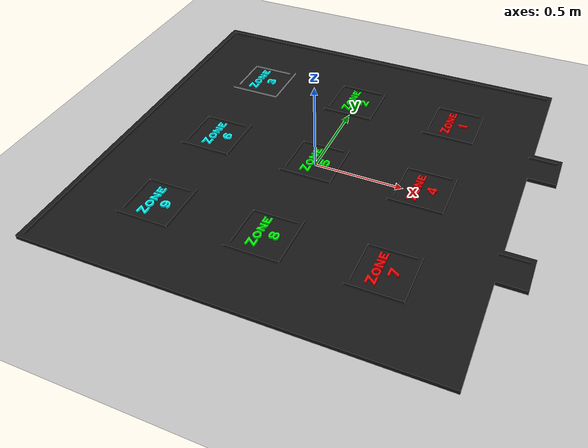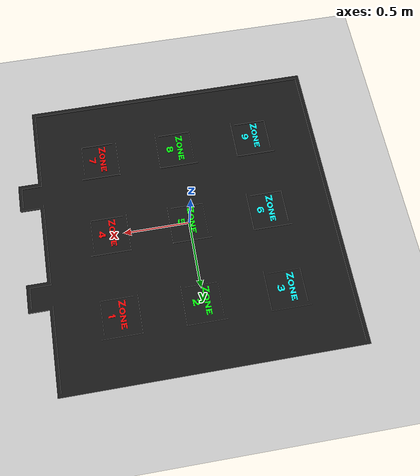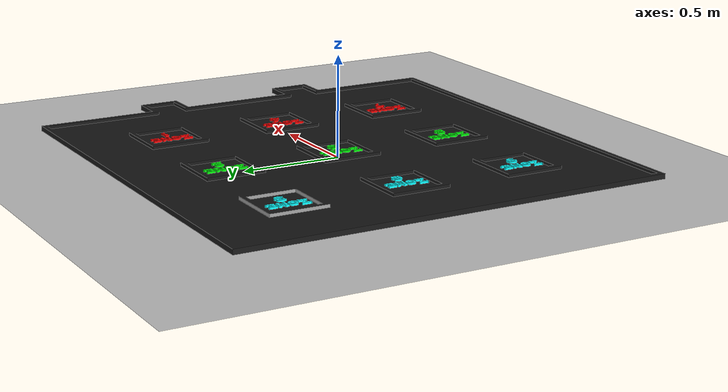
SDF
<?xml version="1.0"?>

<sdf version="1.5">
    <world name="default">
        <!-- A global light source -->
        <include>
            <uri>model://sun</uri>
        </include>

        <!-- A ground plane -->
        <include>
            <uri>model://ground_plane</uri>
        </include>
        <include>
            <uri>model://warehouse</uri>
        </include>
    </world>
</sdf>

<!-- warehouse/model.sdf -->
<sdf version='1.4'>
  <model name="warehouse">
    <static>true</static>
    <pose>0 0 0 0 0 -3.14 </pose>

    <link name="warehouse">
        <pose>0 0 0.02 0 0 0</pose>
    <collision name="collision">
        <geometry>
          <mesh>
              <uri>model://warehouse/meshes/SimWarehouse.dae</uri>
          </mesh>
        </geometry>
      </collision>

    <visual name="visual">
        <geometry>
          <mesh>
                  <uri>model://warehouse/meshes/SimWarehouse.dae</uri>
                  <lighting>1</lighting>
          </mesh>
        </geometry>
      </visual>
    </link>

  </model>
</sdf>
